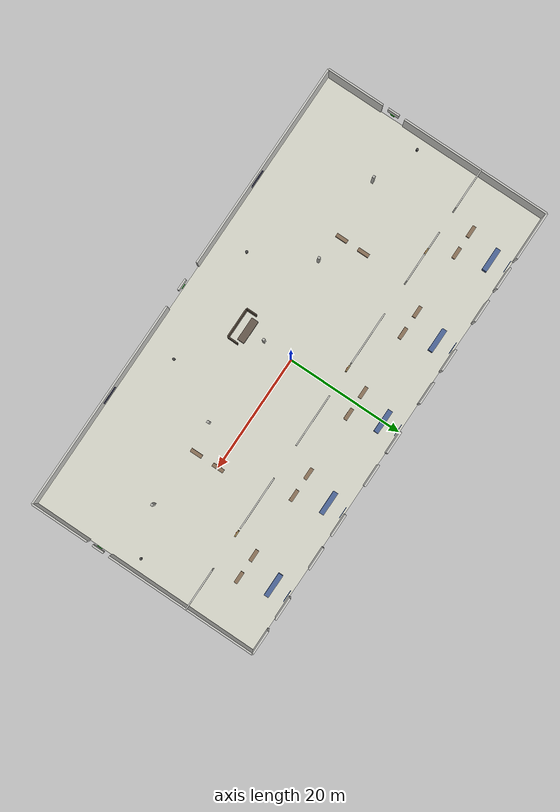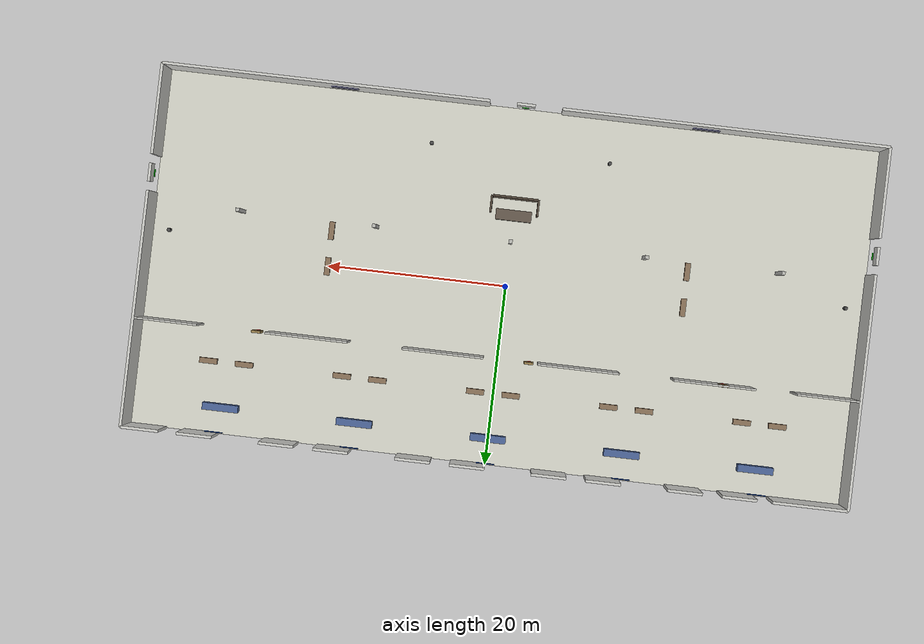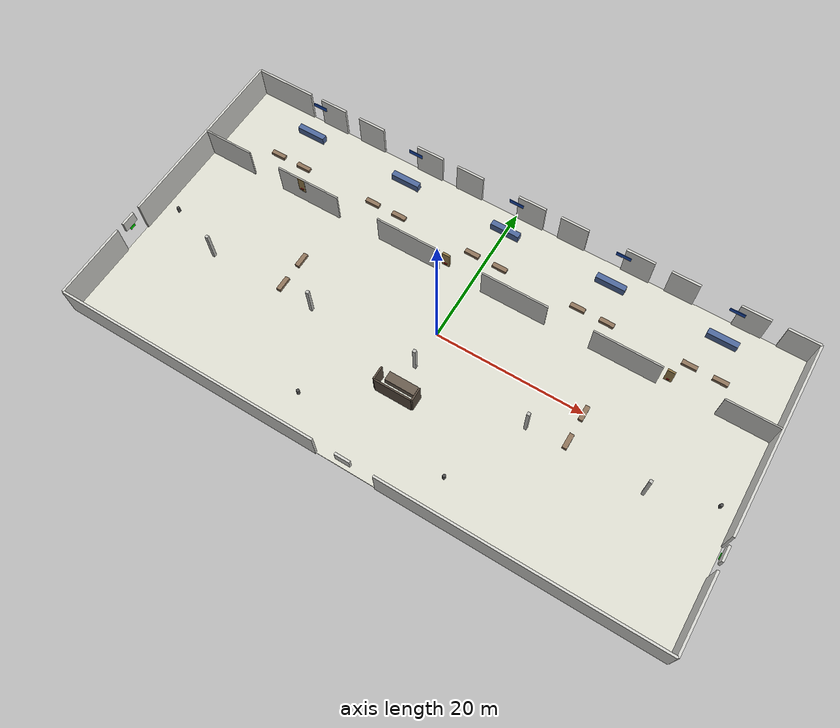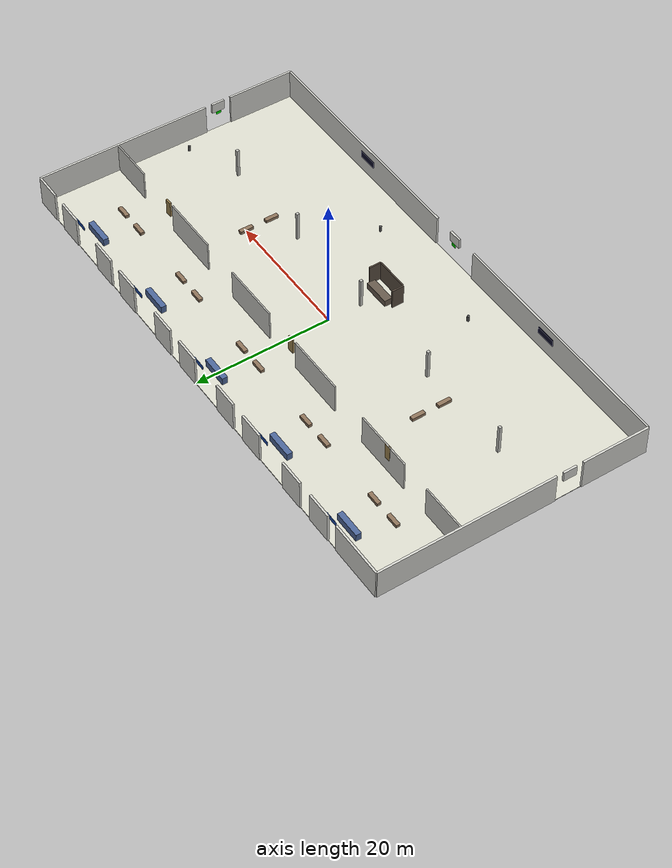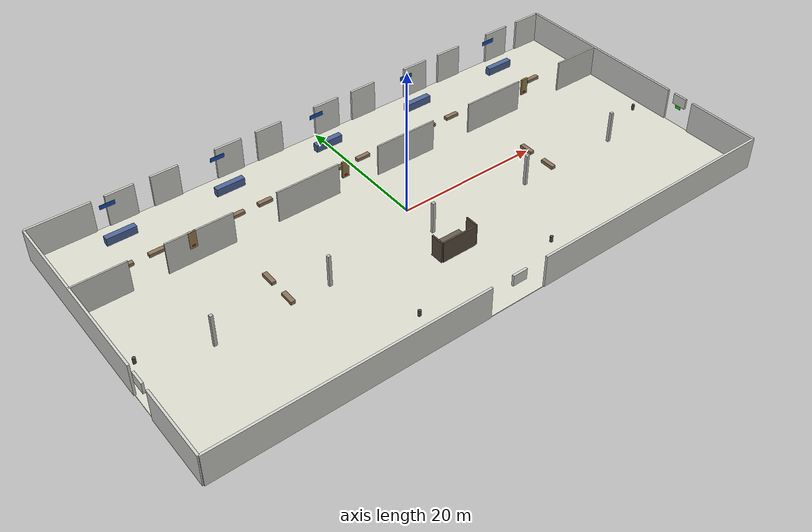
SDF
<?xml version="1.0" ?>
<sdf version="1.10">
  <world name="airport_terminal">

    <!--  SYSTEM PLUGINS                                         -->
    <plugin filename="gz-sim-physics-system"
            name="gz::sim::systems::Physics"/>
    <plugin filename="gz-sim-sensors-system"
            name="gz::sim::systems::Sensors">
      <render_engine>ogre</render_engine>
    </plugin>
    <plugin filename="gz-sim-scene-broadcaster-system"
            name="gz::sim::systems::SceneBroadcaster"/>
    <plugin filename="gz-sim-user-commands-system"
            name="gz::sim::systems::UserCommands"/>
    <plugin filename="gz-sim-contact-system"
            name="gz::sim::systems::Contact"/>

    <!--  PHYSIK                                                 -->
    <physics name="default_physics" type="ignored">
      <max_step_size>0.004</max_step_size>
      <real_time_factor>1.0</real_time_factor>
      <real_time_update_rate>250</real_time_update_rate>
    </physics>

    <!--  BELEUCHTUNG – Innenraum (kein Sonnenlicht)             -->
    <ambient>0.6 0.6 0.6 1</ambient>
    <background>0.2 0.2 0.2 1</background>

    <!-- Hauptbeleuchtung – gleichmäßig wie Neonröhren -->
    <light name="light_main" type="directional">
      <pose>0 0 4.0 0 0 0</pose>
      <cast_shadows>false</cast_shadows>
      <diffuse>0.95 0.95 1.0 1</diffuse>
      <specular>0.2 0.2 0.2 1</specular>
      <direction>0 0 -1</direction>
      <attenuation>
        <range>1000</range>
        <constant>0.9</constant>
        <linear>0.01</linear>
        <quadratic>0.0001</quadratic>
      </attenuation>
    </light>

    <!-- Punktlichter entlang des Korridors (Deckenlampen) -->
    <light name="lamp_1" type="point">
      <pose>-30 0 4.2 0 0 0</pose>
      <diffuse>1.0 1.0 0.95 1</diffuse>
      <specular>0.1 0.1 0.1 1</specular>
      <attenuation><range>20</range><constant>0.5</constant><linear>0.05</linear><quadratic>0.001</quadratic></attenuation>
      <cast_shadows>false</cast_shadows>
    </light>
    <light name="lamp_2" type="point">
      <pose>-15 0 4.2 0 0 0</pose>
      <diffuse>1.0 1.0 0.95 1</diffuse>
      <specular>0.1 0.1 0.1 1</specular>
      <attenuation><range>20</range><constant>0.5</constant><linear>0.05</linear><quadratic>0.001</quadratic></attenuation>
      <cast_shadows>false</cast_shadows>
    </light>
    <light name="lamp_3" type="point">
      <pose>0 0 4.2 0 0 0</pose>
      <diffuse>1.0 1.0 0.95 1</diffuse>
      <specular>0.1 0.1 0.1 1</specular>
      <attenuation><range>20</range><constant>0.5</constant><linear>0.05</linear><quadratic>0.001</quadratic></attenuation>
      <cast_shadows>false</cast_shadows>
    </light>
    <light name="lamp_4" type="point">
      <pose>15 0 4.2 0 0 0</pose>
      <diffuse>1.0 1.0 0.95 1</diffuse>
      <specular>0.1 0.1 0.1 1</specular>
      <attenuation><range>20</range><constant>0.5</constant><linear>0.05</linear><quadratic>0.001</quadratic></attenuation>
      <cast_shadows>false</cast_shadows>
    </light>
    <light name="lamp_5" type="point">
      <pose>30 0 4.2 0 0 0</pose>
      <diffuse>1.0 1.0 0.95 1</diffuse>
      <specular>0.1 0.1 0.1 1</specular>
      <attenuation><range>20</range><constant>0.5</constant><linear>0.05</linear><quadratic>0.001</quadratic></attenuation>
      <cast_shadows>false</cast_shadows>
    </light>
    <!-- Gate-Bereich Lichter -->
    <light name="lamp_gate_1" type="point">
      <pose>-30 15 4.2 0 0 0</pose>
      <diffuse>1.0 1.0 0.95 1</diffuse>
      <specular>0.1 0.1 0.1 1</specular>
      <attenuation><range>15</range><constant>0.5</constant><linear>0.05</linear><quadratic>0.001</quadratic></attenuation>
      <cast_shadows>false</cast_shadows>
    </light>
    <light name="lamp_gate_2" type="point">
      <pose>-15 15 4.2 0 0 0</pose>
      <diffuse>1.0 1.0 0.95 1</diffuse>
      <specular>0.1 0.1 0.1 1</specular>
      <attenuation><range>15</range><constant>0.5</constant><linear>0.05</linear><quadratic>0.001</quadratic></attenuation>
      <cast_shadows>false</cast_shadows>
    </light>
    <light name="lamp_gate_3" type="point">
      <pose>0 15 4.2 0 0 0</pose>
      <diffuse>1.0 1.0 0.95 1</diffuse>
      <specular>0.1 0.1 0.1 1</specular>
      <attenuation><range>15</range><constant>0.5</constant><linear>0.05</linear><quadratic>0.001</quadratic></attenuation>
      <cast_shadows>false</cast_shadows>
    </light>
    <light name="lamp_gate_4" type="point">
      <pose>15 15 4.2 0 0 0</pose>
      <diffuse>1.0 1.0 0.95 1</diffuse>
      <specular>0.1 0.1 0.1 1</specular>
      <attenuation><range>15</range><constant>0.5</constant><linear>0.05</linear><quadratic>0.001</quadratic></attenuation>
      <cast_shadows>false</cast_shadows>
    </light>
    <light name="lamp_gate_5" type="point">
      <pose>30 15 4.2 0 0 0</pose>
      <diffuse>1.0 1.0 0.95 1</diffuse>
      <specular>0.1 0.1 0.1 1</specular>
      <attenuation><range>15</range><constant>0.5</constant><linear>0.05</linear><quadratic>0.001</quadratic></attenuation>
      <cast_shadows>false</cast_shadows>
    </light>

    <!--  BODEN – Terminalboden (80m × 40m)                      -->
    <model name="terminal_floor">
      <static>true</static>
      <pose>0 0 0 0 0 0</pose>
      <link name="link">
        <collision name="collision">
          <geometry>
            <box><size>80 40 0.1</size></box>
          </geometry>
          <surface>
            <friction><ode><mu>0.8</mu><mu2>0.8</mu2></ode></friction>
          </surface>
        </collision>
        <visual name="visual">
          <geometry>
            <box><size>80 40 0.1</size></box>
          </geometry>
          <material>
            <ambient>0.85 0.85 0.80 1</ambient>
            <diffuse>0.85 0.85 0.80 1</diffuse>
            <specular>0.3 0.3 0.3 1</specular>
          </material>
        </visual>
        <pose>0 0 -0.05 0 0 0</pose>
      </link>
    </model>

    <!--  AUSSENWÄNDE                                             -->
    <!--  Terminal: 80m lang (X), 40m breit (Y), 4.5m hoch       -->
    <!--  Wand-Dicke: 0.3m (realistisch Beton/Mauerwerk)         -->

    <!-- Nordwand (Y=+20) – Gate-Seite, mit Gate-Öffnungen -->
    <!-- Segment West -->
    <model name="wall_north_w1">
      <static>true</static>
      <pose>-35.85 20 2.25 0 0 0</pose>
      <link name="link">
        <collision name="col"><geometry><box><size>8.3 0.3 4.5</size></box></geometry></collision>
        <visual name="vis"><geometry><box><size>8.3 0.3 4.5</size></box></geometry>
          <material><ambient>0.82 0.82 0.80 1</ambient><diffuse>0.82 0.82 0.80 1</diffuse></material>
        </visual>
      </link>
    </model>
    <!-- Gate A1 Öffnung bei X=-30 (Breite 3.5m) -->
    <model name="wall_north_w2">
      <static>true</static>
      <pose>-28.075 20 2.25 0 0 0</pose>
      <link name="link">
        <collision name="col"><geometry><box><size>3.85 0.3 4.5</size></box></geometry></collision>
        <visual name="vis"><geometry><box><size>3.85 0.3 4.5</size></box></geometry>
          <material><ambient>0.82 0.82 0.80 1</ambient><diffuse>0.82 0.82 0.80 1</diffuse></material>
        </visual>
      </link>
    </model>
    <model name="wall_north_w3">
      <static>true</static>
      <pose>-22.075 20 2.25 0 0 0</pose>
      <link name="link">
        <collision name="col"><geometry><box><size>3.85 0.3 4.5</size></box></geometry></collision>
        <visual name="vis"><geometry><box><size>3.85 0.3 4.5</size></box></geometry>
          <material><ambient>0.82 0.82 0.80 1</ambient><diffuse>0.82 0.82 0.80 1</diffuse></material>
        </visual>
      </link>
    </model>
    <!-- Gate A2 Öffnung bei X=-15 -->
    <model name="wall_north_w4">
      <static>true</static>
      <pose>-13.075 20 2.25 0 0 0</pose>
      <link name="link">
        <collision name="col"><geometry><box><size>3.85 0.3 4.5</size></box></geometry></collision>
        <visual name="vis"><geometry><box><size>3.85 0.3 4.5</size></box></geometry>
          <material><ambient>0.82 0.82 0.80 1</ambient><diffuse>0.82 0.82 0.80 1</diffuse></material>
        </visual>
      </link>
    </model>
    <model name="wall_north_w5">
      <static>true</static>
      <pose>-7.075 20 2.25 0 0 0</pose>
      <link name="link">
        <collision name="col"><geometry><box><size>3.85 0.3 4.5</size></box></geometry></collision>
        <visual name="vis"><geometry><box><size>3.85 0.3 4.5</size></box></geometry>
          <material><ambient>0.82 0.82 0.80 1</ambient><diffuse>0.82 0.82 0.80 1</diffuse></material>
        </visual>
      </link>
    </model>
    <!-- Gate A3 Öffnung bei X=0 -->
    <model name="wall_north_w6">
      <static>true</static>
      <pose>1.925 20 2.25 0 0 0</pose>
      <link name="link">
        <collision name="col"><geometry><box><size>3.85 0.3 4.5</size></box></geometry></collision>
        <visual name="vis"><geometry><box><size>3.85 0.3 4.5</size></box></geometry>
          <material><ambient>0.82 0.82 0.80 1</ambient><diffuse>0.82 0.82 0.80 1</diffuse></material>
        </visual>
      </link>
    </model>
    <model name="wall_north_w7">
      <static>true</static>
      <pose>7.925 20 2.25 0 0 0</pose>
      <link name="link">
        <collision name="col"><geometry><box><size>3.85 0.3 4.5</size></box></geometry></collision>
        <visual name="vis"><geometry><box><size>3.85 0.3 4.5</size></box></geometry>
          <material><ambient>0.82 0.82 0.80 1</ambient><diffuse>0.82 0.82 0.80 1</diffuse></material>
        </visual>
      </link>
    </model>
    <!-- Gate A4 Öffnung bei X=15 -->
    <model name="wall_north_w8">
      <static>true</static>
      <pose>16.925 20 2.25 0 0 0</pose>
      <link name="link">
        <collision name="col"><geometry><box><size>3.85 0.3 4.5</size></box></geometry></collision>
        <visual name="vis"><geometry><box><size>3.85 0.3 4.5</size></box></geometry>
          <material><ambient>0.82 0.82 0.80 1</ambient><diffuse>0.82 0.82 0.80 1</diffuse></material>
        </visual>
      </link>
    </model>
    <model name="wall_north_w9">
      <static>true</static>
      <pose>22.925 20 2.25 0 0 0</pose>
      <link name="link">
        <collision name="col"><geometry><box><size>3.85 0.3 4.5</size></box></geometry></collision>
        <visual name="vis"><geometry><box><size>3.85 0.3 4.5</size></box></geometry>
          <material><ambient>0.82 0.82 0.80 1</ambient><diffuse>0.82 0.82 0.80 1</diffuse></material>
        </visual>
      </link>
    </model>
    <!-- Gate A5 Öffnung bei X=30 -->
    <model name="wall_north_w10">
      <static>true</static>
      <pose>31.925 20 2.25 0 0 0</pose>
      <link name="link">
        <collision name="col"><geometry><box><size>3.85 0.3 4.5</size></box></geometry></collision>
        <visual name="vis"><geometry><box><size>3.85 0.3 4.5</size></box></geometry>
          <material><ambient>0.82 0.82 0.80 1</ambient><diffuse>0.82 0.82 0.80 1</diffuse></material>
        </visual>
      </link>
    </model>
    <model name="wall_north_e1">
      <static>true</static>
      <pose>37.925 20 2.25 0 0 0</pose>
      <link name="link">
        <collision name="col"><geometry><box><size>4.15 0.3 4.5</size></box></geometry></collision>
        <visual name="vis"><geometry><box><size>4.15 0.3 4.5</size></box></geometry>
          <material><ambient>0.82 0.82 0.80 1</ambient><diffuse>0.82 0.82 0.80 1</diffuse></material>
        </visual>
      </link>
    </model>

    <!-- Südwand (Y=-20) – mit 1 Notausgang in der Mitte -->
    <model name="wall_south_w1">
      <static>true</static>
      <pose>-22 -20 2.25 0 0 0</pose>
      <link name="link">
        <collision name="col"><geometry><box><size>36 0.3 4.5</size></box></geometry></collision>
        <visual name="vis"><geometry><box><size>36 0.3 4.5</size></box></geometry>
          <material><ambient>0.82 0.82 0.80 1</ambient><diffuse>0.82 0.82 0.80 1</diffuse></material>
        </visual>
      </link>
    </model>
    <!-- Notausgang Mitte-Süd (Breite 2.0m) bei X=0 -->
    <model name="wall_south_emergency_door_frame">
      <static>true</static>
      <pose>0 -20 3.75 0 0 0</pose>
      <link name="link">
        <collision name="col"><geometry><box><size>2.0 0.3 1.5</size></box></geometry></collision>
        <visual name="vis"><geometry><box><size>2.0 0.3 1.5</size></box></geometry>
          <material><ambient>0.82 0.82 0.80 1</ambient><diffuse>0.82 0.82 0.80 1</diffuse></material>
        </visual>
      </link>
    </model>
    <model name="wall_south_w2">
      <static>true</static>
      <pose>22 -20 2.25 0 0 0</pose>
      <link name="link">
        <collision name="col"><geometry><box><size>36 0.3 4.5</size></box></geometry></collision>
        <visual name="vis"><geometry><box><size>36 0.3 4.5</size></box></geometry>
          <material><ambient>0.82 0.82 0.80 1</ambient><diffuse>0.82 0.82 0.80 1</diffuse></material>
        </visual>
      </link>
    </model>

    <!-- Westwand (X=-40) – mit 1 Notausgang -->
    <model name="wall_west_w1">
      <static>true</static>
      <pose>-40 7 2.25 0 0 0</pose>
      <link name="link">
        <collision name="col"><geometry><box><size>0.3 26 4.5</size></box></geometry></collision>
        <visual name="vis"><geometry><box><size>0.3 26 4.5</size></box></geometry>
          <material><ambient>0.82 0.82 0.80 1</ambient><diffuse>0.82 0.82 0.80 1</diffuse></material>
        </visual>
      </link>
    </model>
    <!-- Notausgang West (Y=-8, Breite 2.0m) -->
    <model name="wall_west_emergency_frame">
      <static>true</static>
      <pose>-40 -8 3.75 0 0 0</pose>
      <link name="link">
        <collision name="col"><geometry><box><size>0.3 2.0 1.5</size></box></geometry></collision>
        <visual name="vis"><geometry><box><size>0.3 2.0 1.5</size></box></geometry>
          <material><ambient>0.82 0.82 0.80 1</ambient><diffuse>0.82 0.82 0.80 1</diffuse></material>
        </visual>
      </link>
    </model>
    <model name="wall_west_w2">
      <static>true</static>
      <pose>-40 -15 2.25 0 0 0</pose>
      <link name="link">
        <collision name="col"><geometry><box><size>0.3 10 4.5</size></box></geometry></collision>
        <visual name="vis"><geometry><box><size>0.3 10 4.5</size></box></geometry>
          <material><ambient>0.82 0.82 0.80 1</ambient><diffuse>0.82 0.82 0.80 1</diffuse></material>
        </visual>
      </link>
    </model>

    <!-- Ostwand (X=+40) – mit 1 Notausgang -->
    <model name="wall_east_w1">
      <static>true</static>
      <pose>40 7 2.25 0 0 0</pose>
      <link name="link">
        <collision name="col"><geometry><box><size>0.3 26 4.5</size></box></geometry></collision>
        <visual name="vis"><geometry><box><size>0.3 26 4.5</size></box></geometry>
          <material><ambient>0.82 0.82 0.80 1</ambient><diffuse>0.82 0.82 0.80 1</diffuse></material>
        </visual>
      </link>
    </model>
    <!-- Notausgang Ost (Y=-8, Breite 2.0m) -->
    <model name="wall_east_emergency_frame">
      <static>true</static>
      <pose>40 -8 3.75 0 0 0</pose>
      <link name="link">
        <collision name="col"><geometry><box><size>0.3 2.0 1.5</size></box></geometry></collision>
        <visual name="vis"><geometry><box><size>0.3 2.0 1.5</size></box></geometry>
          <material><ambient>0.82 0.82 0.80 1</ambient><diffuse>0.82 0.82 0.80 1</diffuse></material>
        </visual>
      </link>
    </model>
    <model name="wall_east_w2">
      <static>true</static>
      <pose>40 -15 2.25 0 0 0</pose>
      <link name="link">
        <collision name="col"><geometry><box><size>0.3 10 4.5</size></box></geometry></collision>
        <visual name="vis"><geometry><box><size>0.3 10 4.5</size></box></geometry>
          <material><ambient>0.82 0.82 0.80 1</ambient><diffuse>0.82 0.82 0.80 1</diffuse></material>
        </visual>
      </link>
    </model>

    <!--  NOTAUSGANG-SCHILDER (grüne Markierungen)               -->
    <model name="emergency_sign_south">
      <static>true</static>
      <pose>0 -19.8 2.8 0 0 0</pose>
      <link name="link">
        <visual name="vis">
          <geometry><box><size>0.8 0.05 0.4</size></box></geometry>
          <material><ambient>0.0 0.8 0.0 1</ambient><diffuse>0.0 0.9 0.0 1</diffuse><emissive>0.0 0.5 0.0 1</emissive></material>
        </visual>
      </link>
    </model>
    <model name="emergency_sign_west">
      <static>true</static>
      <pose>-39.8 -8 2.8 0 0 1.5708</pose>
      <link name="link">
        <visual name="vis">
          <geometry><box><size>0.8 0.05 0.4</size></box></geometry>
          <material><ambient>0.0 0.8 0.0 1</ambient><diffuse>0.0 0.9 0.0 1</diffuse><emissive>0.0 0.5 0.0 1</emissive></material>
        </visual>
      </link>
    </model>
    <model name="emergency_sign_east">
      <static>true</static>
      <pose>39.8 -8 2.8 0 0 1.5708</pose>
      <link name="link">
        <visual name="vis">
          <geometry><box><size>0.8 0.05 0.4</size></box></geometry>
          <material><ambient>0.0 0.8 0.0 1</ambient><diffuse>0.0 0.9 0.0 1</diffuse><emissive>0.0 0.5 0.0 1</emissive></material>
        </visual>
      </link>
    </model>

    <!--  TRENNWAND: Korridor ↔ Gate-Bereich                     -->
    <!--  Y=+8: Wand mit 5 Durchgängen (je Gate ein Eingang)     -->
    <model name="divider_w1">
      <static>true</static>
      <pose>-36.5 8 2.25 0 0 0</pose>
      <link name="link">
        <collision name="col"><geometry><box><size>7.0 0.2 4.5</size></box></geometry></collision>
        <visual name="vis"><geometry><box><size>7.0 0.2 4.5</size></box></geometry>
          <material><ambient>0.78 0.78 0.76 1</ambient><diffuse>0.78 0.78 0.76 1</diffuse></material>
        </visual>
      </link>
    </model>
    <model name="divider_w2">
      <static>true</static>
      <pose>-24 8 2.25 0 0 0</pose>
      <link name="link">
        <collision name="col"><geometry><box><size>9.0 0.2 4.5</size></box></geometry></collision>
        <visual name="vis"><geometry><box><size>9.0 0.2 4.5</size></box></geometry>
          <material><ambient>0.78 0.78 0.76 1</ambient><diffuse>0.78 0.78 0.76 1</diffuse></material>
        </visual>
      </link>
    </model>
    <model name="divider_w3">
      <static>true</static>
      <pose>-9 8 2.25 0 0 0</pose>
      <link name="link">
        <collision name="col"><geometry><box><size>9.0 0.2 4.5</size></box></geometry></collision>
        <visual name="vis"><geometry><box><size>9.0 0.2 4.5</size></box></geometry>
          <material><ambient>0.78 0.78 0.76 1</ambient><diffuse>0.78 0.78 0.76 1</diffuse></material>
        </visual>
      </link>
    </model>
    <model name="divider_w4">
      <static>true</static>
      <pose>6 8 2.25 0 0 0</pose>
      <link name="link">
        <collision name="col"><geometry><box><size>9.0 0.2 4.5</size></box></geometry></collision>
        <visual name="vis"><geometry><box><size>9.0 0.2 4.5</size></box></geometry>
          <material><ambient>0.78 0.78 0.76 1</ambient><diffuse>0.78 0.78 0.76 1</diffuse></material>
        </visual>
      </link>
    </model>
    <model name="divider_w5">
      <static>true</static>
      <pose>21 8 2.25 0 0 0</pose>
      <link name="link">
        <collision name="col"><geometry><box><size>9.0 0.2 4.5</size></box></geometry></collision>
        <visual name="vis"><geometry><box><size>9.0 0.2 4.5</size></box></geometry>
          <material><ambient>0.78 0.78 0.76 1</ambient><diffuse>0.78 0.78 0.76 1</diffuse></material>
        </visual>
      </link>
    </model>
    <model name="divider_w6">
      <static>true</static>
      <pose>36.5 8 2.25 0 0 0</pose>
      <link name="link">
        <collision name="col"><geometry><box><size>7.0 0.2 4.5</size></box></geometry></collision>
        <visual name="vis"><geometry><box><size>7.0 0.2 4.5</size></box></geometry>
          <material><ambient>0.78 0.78 0.76 1</ambient><diffuse>0.78 0.78 0.76 1</diffuse></material>
        </visual>
      </link>
    </model>

    <!--  GATE-TRESEN (5 Boarding Gates)                         -->
    <!--  Realistisch: 4m breit, 1.1m hoch, 0.8m tief           -->
    <!--  Positionen: X = -30, -15, 0, 15, 30 / Y = 17          -->

    <!-- Gate A1 -->
    <model name="gate_counter_A1">
      <static>true</static>
      <pose>-30 17 0.55 0 0 0</pose>
      <link name="link">
        <collision name="col"><geometry><box><size>4.0 0.8 1.1</size></box></geometry></collision>
        <visual name="vis"><geometry><box><size>4.0 0.8 1.1</size></box></geometry>
          <material><ambient>0.3 0.4 0.6 1</ambient><diffuse>0.3 0.4 0.6 1</diffuse><specular>0.2 0.2 0.3 1</specular></material>
        </visual>
      </link>
    </model>
    <model name="gate_sign_A1">
      <static>true</static>
      <pose>-30 19.5 3.5 0 0 0</pose>
      <link name="link">
        <visual name="vis"><geometry><box><size>2.0 0.05 0.6</size></box></geometry>
          <material><ambient>0.1 0.3 0.7 1</ambient><diffuse>0.1 0.3 0.7 1</diffuse><emissive>0.05 0.15 0.4 1</emissive></material>
        </visual>
      </link>
    </model>

    <!-- Gate A2 -->
    <model name="gate_counter_A2">
      <static>true</static>
      <pose>-15 17 0.55 0 0 0</pose>
      <link name="link">
        <collision name="col"><geometry><box><size>4.0 0.8 1.1</size></box></geometry></collision>
        <visual name="vis"><geometry><box><size>4.0 0.8 1.1</size></box></geometry>
          <material><ambient>0.3 0.4 0.6 1</ambient><diffuse>0.3 0.4 0.6 1</diffuse><specular>0.2 0.2 0.3 1</specular></material>
        </visual>
      </link>
    </model>
    <model name="gate_sign_A2">
      <static>true</static>
      <pose>-15 19.5 3.5 0 0 0</pose>
      <link name="link">
        <visual name="vis"><geometry><box><size>2.0 0.05 0.6</size></box></geometry>
          <material><ambient>0.1 0.3 0.7 1</ambient><diffuse>0.1 0.3 0.7 1</diffuse><emissive>0.05 0.15 0.4 1</emissive></material>
        </visual>
      </link>
    </model>

    <!-- Gate A3 -->
    <model name="gate_counter_A3">
      <static>true</static>
      <pose>0 17 0.55 0 0 0</pose>
      <link name="link">
        <collision name="col"><geometry><box><size>4.0 0.8 1.1</size></box></geometry></collision>
        <visual name="vis"><geometry><box><size>4.0 0.8 1.1</size></box></geometry>
          <material><ambient>0.3 0.4 0.6 1</ambient><diffuse>0.3 0.4 0.6 1</diffuse><specular>0.2 0.2 0.3 1</specular></material>
        </visual>
      </link>
    </model>
    <model name="gate_sign_A3">
      <static>true</static>
      <pose>0 19.5 3.5 0 0 0</pose>
      <link name="link">
        <visual name="vis"><geometry><box><size>2.0 0.05 0.6</size></box></geometry>
          <material><ambient>0.1 0.3 0.7 1</ambient><diffuse>0.1 0.3 0.7 1</diffuse><emissive>0.05 0.15 0.4 1</emissive></material>
        </visual>
      </link>
    </model>

    <!-- Gate A4 -->
    <model name="gate_counter_A4">
      <static>true</static>
      <pose>15 17 0.55 0 0 0</pose>
      <link name="link">
        <collision name="col"><geometry><box><size>4.0 0.8 1.1</size></box></geometry></collision>
        <visual name="vis"><geometry><box><size>4.0 0.8 1.1</size></box></geometry>
          <material><ambient>0.3 0.4 0.6 1</ambient><diffuse>0.3 0.4 0.6 1</diffuse><specular>0.2 0.2 0.3 1</specular></material>
        </visual>
      </link>
    </model>
    <model name="gate_sign_A4">
      <static>true</static>
      <pose>15 19.5 3.5 0 0 0</pose>
      <link name="link">
        <visual name="vis"><geometry><box><size>2.0 0.05 0.6</size></box></geometry>
          <material><ambient>0.1 0.3 0.7 1</ambient><diffuse>0.1 0.3 0.7 1</diffuse><emissive>0.05 0.15 0.4 1</emissive></material>
        </visual>
      </link>
    </model>

    <!-- Gate A5 -->
    <model name="gate_counter_A5">
      <static>true</static>
      <pose>30 17 0.55 0 0 0</pose>
      <link name="link">
        <collision name="col"><geometry><box><size>4.0 0.8 1.1</size></box></geometry></collision>
        <visual name="vis"><geometry><box><size>4.0 0.8 1.1</size></box></geometry>
          <material><ambient>0.3 0.4 0.6 1</ambient><diffuse>0.3 0.4 0.6 1</diffuse><specular>0.2 0.2 0.3 1</specular></material>
        </visual>
      </link>
    </model>
    <model name="gate_sign_A5">
      <static>true</static>
      <pose>30 19.5 3.5 0 0 0</pose>
      <link name="link">
        <visual name="vis"><geometry><box><size>2.0 0.05 0.6</size></box></geometry>
          <material><ambient>0.1 0.3 0.7 1</ambient><diffuse>0.1 0.3 0.7 1</diffuse><emissive>0.05 0.15 0.4 1</emissive></material>
        </visual>
      </link>
    </model>

    <!--  SITZBÄNKE – Gate-Wartebereich (je Gate 2 Bänke)        -->
    <!--  Realistisch: 2.0m lang, 0.6m tief, 0.45m hoch          -->

    <!-- Bänke Gate A1 -->
    <model name="bench_A1_1">
      <static>true</static>
      <pose>-32 12 0.225 0 0 0</pose>
      <link name="link">
        <collision name="col"><geometry><box><size>2.0 0.6 0.45</size></box></geometry></collision>
        <visual name="vis"><geometry><box><size>2.0 0.6 0.45</size></box></geometry>
          <material><ambient>0.55 0.45 0.35 1</ambient><diffuse>0.55 0.45 0.35 1</diffuse></material>
        </visual>
      </link>
    </model>
    <model name="bench_A1_2">
      <static>true</static>
      <pose>-28 12 0.225 0 0 0</pose>
      <link name="link">
        <collision name="col"><geometry><box><size>2.0 0.6 0.45</size></box></geometry></collision>
        <visual name="vis"><geometry><box><size>2.0 0.6 0.45</size></box></geometry>
          <material><ambient>0.55 0.45 0.35 1</ambient><diffuse>0.55 0.45 0.35 1</diffuse></material>
        </visual>
      </link>
    </model>

    <!-- Bänke Gate A2 -->
    <model name="bench_A2_1">
      <static>true</static>
      <pose>-17 12 0.225 0 0 0</pose>
      <link name="link">
        <collision name="col"><geometry><box><size>2.0 0.6 0.45</size></box></geometry></collision>
        <visual name="vis"><geometry><box><size>2.0 0.6 0.45</size></box></geometry>
          <material><ambient>0.55 0.45 0.35 1</ambient><diffuse>0.55 0.45 0.35 1</diffuse></material>
        </visual>
      </link>
    </model>
    <model name="bench_A2_2">
      <static>true</static>
      <pose>-13 12 0.225 0 0 0</pose>
      <link name="link">
        <collision name="col"><geometry><box><size>2.0 0.6 0.45</size></box></geometry></collision>
        <visual name="vis"><geometry><box><size>2.0 0.6 0.45</size></box></geometry>
          <material><ambient>0.55 0.45 0.35 1</ambient><diffuse>0.55 0.45 0.35 1</diffuse></material>
        </visual>
      </link>
    </model>

    <!-- Bänke Gate A3 -->
    <model name="bench_A3_1">
      <static>true</static>
      <pose>-2 12 0.225 0 0 0</pose>
      <link name="link">
        <collision name="col"><geometry><box><size>2.0 0.6 0.45</size></box></geometry></collision>
        <visual name="vis"><geometry><box><size>2.0 0.6 0.45</size></box></geometry>
          <material><ambient>0.55 0.45 0.35 1</ambient><diffuse>0.55 0.45 0.35 1</diffuse></material>
        </visual>
      </link>
    </model>
    <model name="bench_A3_2">
      <static>true</static>
      <pose>2 12 0.225 0 0 0</pose>
      <link name="link">
        <collision name="col"><geometry><box><size>2.0 0.6 0.45</size></box></geometry></collision>
        <visual name="vis"><geometry><box><size>2.0 0.6 0.45</size></box></geometry>
          <material><ambient>0.55 0.45 0.35 1</ambient><diffuse>0.55 0.45 0.35 1</diffuse></material>
        </visual>
      </link>
    </model>

    <!-- Bänke Gate A4 -->
    <model name="bench_A4_1">
      <static>true</static>
      <pose>13 12 0.225 0 0 0</pose>
      <link name="link">
        <collision name="col"><geometry><box><size>2.0 0.6 0.45</size></box></geometry></collision>
        <visual name="vis"><geometry><box><size>2.0 0.6 0.45</size></box></geometry>
          <material><ambient>0.55 0.45 0.35 1</ambient><diffuse>0.55 0.45 0.35 1</diffuse></material>
        </visual>
      </link>
    </model>
    <model name="bench_A4_2">
      <static>true</static>
      <pose>17 12 0.225 0 0 0</pose>
      <link name="link">
        <collision name="col"><geometry><box><size>2.0 0.6 0.45</size></box></geometry></collision>
        <visual name="vis"><geometry><box><size>2.0 0.6 0.45</size></box></geometry>
          <material><ambient>0.55 0.45 0.35 1</ambient><diffuse>0.55 0.45 0.35 1</diffuse></material>
        </visual>
      </link>
    </model>

    <!-- Bänke Gate A5 -->
    <model name="bench_A5_1">
      <static>true</static>
      <pose>28 12 0.225 0 0 0</pose>
      <link name="link">
        <collision name="col"><geometry><box><size>2.0 0.6 0.45</size></box></geometry></collision>
        <visual name="vis"><geometry><box><size>2.0 0.6 0.45</size></box></geometry>
          <material><ambient>0.55 0.45 0.35 1</ambient><diffuse>0.55 0.45 0.35 1</diffuse></material>
        </visual>
      </link>
    </model>
    <model name="bench_A5_2">
      <static>true</static>
      <pose>32 12 0.225 0 0 0</pose>
      <link name="link">
        <collision name="col"><geometry><box><size>2.0 0.6 0.45</size></box></geometry></collision>
        <visual name="vis"><geometry><box><size>2.0 0.6 0.45</size></box></geometry>
          <material><ambient>0.55 0.45 0.35 1</ambient><diffuse>0.55 0.45 0.35 1</diffuse></material>
        </visual>
      </link>
    </model>

    <!-- Sitzbänke Hauptkorridor (Wartebereich Mitte) -->
    <model name="bench_corridor_1">
      <static>true</static>
      <pose>-20 0 0.225 0 0 1.5708</pose>
      <link name="link">
        <collision name="col"><geometry><box><size>2.0 0.6 0.45</size></box></geometry></collision>
        <visual name="vis"><geometry><box><size>2.0 0.6 0.45</size></box></geometry>
          <material><ambient>0.55 0.45 0.35 1</ambient><diffuse>0.55 0.45 0.35 1</diffuse></material>
        </visual>
      </link>
    </model>
    <model name="bench_corridor_2">
      <static>true</static>
      <pose>-20 -4 0.225 0 0 1.5708</pose>
      <link name="link">
        <collision name="col"><geometry><box><size>2.0 0.6 0.45</size></box></geometry></collision>
        <visual name="vis"><geometry><box><size>2.0 0.6 0.45</size></box></geometry>
          <material><ambient>0.55 0.45 0.35 1</ambient><diffuse>0.55 0.45 0.35 1</diffuse></material>
        </visual>
      </link>
    </model>
    <model name="bench_corridor_3">
      <static>true</static>
      <pose>20 0 0.225 0 0 1.5708</pose>
      <link name="link">
        <collision name="col"><geometry><box><size>2.0 0.6 0.45</size></box></geometry></collision>
        <visual name="vis"><geometry><box><size>2.0 0.6 0.45</size></box></geometry>
          <material><ambient>0.55 0.45 0.35 1</ambient><diffuse>0.55 0.45 0.35 1</diffuse></material>
        </visual>
      </link>
    </model>
    <model name="bench_corridor_4">
      <static>true</static>
      <pose>20 -4 0.225 0 0 1.5708</pose>
      <link name="link">
        <collision name="col"><geometry><box><size>2.0 0.6 0.45</size></box></geometry></collision>
        <visual name="vis"><geometry><box><size>2.0 0.6 0.45</size></box></geometry>
          <material><ambient>0.55 0.45 0.35 1</ambient><diffuse>0.55 0.45 0.35 1</diffuse></material>
        </visual>
      </link>
    </model>

    <!--  PERSONAL-TÜREN (3 Stück, Südseite der Trennwand)       -->
    <!--  Türrahmen sichtbar, Öffnung 1.0m breit, 2.1m hoch      -->

    <!-- Personaltür 1 – West -->
    <model name="staff_door_frame_1">
      <static>true</static>
      <pose>-25 8 3.3 0 0 0</pose>
      <link name="link">
        <collision name="col"><geometry><box><size>1.0 0.25 2.4</size></box></geometry></collision>
        <visual name="vis"><geometry><box><size>1.0 0.25 2.4</size></box></geometry>
          <material><ambient>0.6 0.5 0.3 1</ambient><diffuse>0.6 0.5 0.3 1</diffuse></material>
        </visual>
      </link>
    </model>
    <!-- Türklinke / Schild -->
    <model name="staff_door_sign_1">
      <static>true</static>
      <pose>-25 7.85 2.5 0 0 0</pose>
      <link name="link">
        <visual name="vis"><geometry><box><size>0.4 0.05 0.2</size></box></geometry>
          <material><ambient>0.8 0.1 0.1 1</ambient><diffuse>0.8 0.1 0.1 1</diffuse></material>
        </visual>
      </link>
    </model>

    <!-- Personaltür 2 – Mitte -->
    <model name="staff_door_frame_2">
      <static>true</static>
      <pose>-3.5 8 3.3 0 0 0</pose>
      <link name="link">
        <collision name="col"><geometry><box><size>1.0 0.25 2.4</size></box></geometry></collision>
        <visual name="vis"><geometry><box><size>1.0 0.25 2.4</size></box></geometry>
          <material><ambient>0.6 0.5 0.3 1</ambient><diffuse>0.6 0.5 0.3 1</diffuse></material>
        </visual>
      </link>
    </model>
    <model name="staff_door_sign_2">
      <static>true</static>
      <pose>-3.5 7.85 2.5 0 0 0</pose>
      <link name="link">
        <visual name="vis"><geometry><box><size>0.4 0.05 0.2</size></box></geometry>
          <material><ambient>0.8 0.1 0.1 1</ambient><diffuse>0.8 0.1 0.1 1</diffuse></material>
        </visual>
      </link>
    </model>

    <!-- Personaltür 3 – Ost -->
    <model name="staff_door_frame_3">
      <static>true</static>
      <pose>26.5 8 3.3 0 0 0</pose>
      <link name="link">
        <collision name="col"><geometry><box><size>1.0 0.25 2.4</size></box></geometry></collision>
        <visual name="vis"><geometry><box><size>1.0 0.25 2.4</size></box></geometry>
          <material><ambient>0.6 0.5 0.3 1</ambient><diffuse>0.6 0.5 0.3 1</diffuse></material>
        </visual>
      </link>
    </model>
    <model name="staff_door_sign_3">
      <static>true</static>
      <pose>26.5 7.85 2.5 0 0 0</pose>
      <link name="link">
        <visual name="vis"><geometry><box><size>0.4 0.05 0.2</size></box></geometry>
          <material><ambient>0.8 0.1 0.1 1</ambient><diffuse>0.8 0.1 0.1 1</diffuse></material>
        </visual>
      </link>
    </model>

    <!--  KIOSK / CAFÉ-THEKE im Hauptkorridor                    -->
    <model name="kiosk_counter">
      <static>true</static>
      <pose>0 -8 0.5 0 0 0</pose>
      <link name="link">
        <collision name="col"><geometry><box><size>4.0 1.2 1.0</size></box></geometry></collision>
        <visual name="vis"><geometry><box><size>4.0 1.2 1.0</size></box></geometry>
          <material><ambient>0.4 0.35 0.3 1</ambient><diffuse>0.4 0.35 0.3 1</diffuse><specular>0.15 0.15 0.15 1</specular></material>
        </visual>
      </link>
    </model>
    <!-- Kiosk Rückwand -->
    <model name="kiosk_backwall">
      <static>true</static>
      <pose>0 -9.9 1.5 0 0 0</pose>
      <link name="link">
        <collision name="col"><geometry><box><size>5.0 0.2 3.0</size></box></geometry></collision>
        <visual name="vis"><geometry><box><size>5.0 0.2 3.0</size></box></geometry>
          <material><ambient>0.35 0.3 0.25 1</ambient><diffuse>0.35 0.3 0.25 1</diffuse></material>
        </visual>
      </link>
    </model>
    <model name="kiosk_sidewall_l">
      <static>true</static>
      <pose>-2.6 -9.0 1.5 0 0 0</pose>
      <link name="link">
        <collision name="col"><geometry><box><size>0.2 1.8 3.0</size></box></geometry></collision>
        <visual name="vis"><geometry><box><size>0.2 1.8 3.0</size></box></geometry>
          <material><ambient>0.35 0.3 0.25 1</ambient><diffuse>0.35 0.3 0.25 1</diffuse></material>
        </visual>
      </link>
    </model>
    <model name="kiosk_sidewall_r">
      <static>true</static>
      <pose>2.6 -9.0 1.5 0 0 0</pose>
      <link name="link">
        <collision name="col"><geometry><box><size>0.2 1.8 3.0</size></box></geometry></collision>
        <visual name="vis"><geometry><box><size>0.2 1.8 3.0</size></box></geometry>
          <material><ambient>0.35 0.3 0.25 1</ambient><diffuse>0.35 0.3 0.25 1</diffuse></material>
        </visual>
      </link>
    </model>

    <!--  MÜLLBEHÄLTER (verteilt im Terminal)                    -->
    <model name="trash_1"><static>true</static><pose>-38 -2 0.4 0 0 0</pose>
      <link name="link">
        <collision name="col"><geometry><cylinder><radius>0.2</radius><length>0.8</length></cylinder></geometry></collision>
        <visual name="vis"><geometry><cylinder><radius>0.2</radius><length>0.8</length></cylinder></geometry>
          <material><ambient>0.3 0.3 0.3 1</ambient><diffuse>0.3 0.3 0.3 1</diffuse></material></visual>
      </link>
    </model>
    <model name="trash_2"><static>true</static><pose>38 -2 0.4 0 0 0</pose>
      <link name="link">
        <collision name="col"><geometry><cylinder><radius>0.2</radius><length>0.8</length></cylinder></geometry></collision>
        <visual name="vis"><geometry><cylinder><radius>0.2</radius><length>0.8</length></cylinder></geometry>
          <material><ambient>0.3 0.3 0.3 1</ambient><diffuse>0.3 0.3 0.3 1</diffuse></material></visual>
      </link>
    </model>
    <model name="trash_3"><static>true</static><pose>-10 -15 0.4 0 0 0</pose>
      <link name="link">
        <collision name="col"><geometry><cylinder><radius>0.2</radius><length>0.8</length></cylinder></geometry></collision>
        <visual name="vis"><geometry><cylinder><radius>0.2</radius><length>0.8</length></cylinder></geometry>
          <material><ambient>0.3 0.3 0.3 1</ambient><diffuse>0.3 0.3 0.3 1</diffuse></material></visual>
      </link>
    </model>
    <model name="trash_4"><static>true</static><pose>10 -15 0.4 0 0 0</pose>
      <link name="link">
        <collision name="col"><geometry><cylinder><radius>0.2</radius><length>0.8</length></cylinder></geometry></collision>
        <visual name="vis"><geometry><cylinder><radius>0.2</radius><length>0.8</length></cylinder></geometry>
          <material><ambient>0.3 0.3 0.3 1</ambient><diffuse>0.3 0.3 0.3 1</diffuse></material></visual>
      </link>
    </model>

    <!--  SÄULEN (strukturelle Stützen, realistisch alle ~10m)   -->
    <!--  0.4m × 0.4m, 4.5m hoch                                 -->
    <model name="pillar_1"><static>true</static><pose>-30 -5 2.25 0 0 0</pose>
      <link name="link">
        <collision name="col"><geometry><box><size>0.4 0.4 4.5</size></box></geometry></collision>
        <visual name="vis"><geometry><box><size>0.4 0.4 4.5</size></box></geometry>
          <material><ambient>0.75 0.75 0.73 1</ambient><diffuse>0.75 0.75 0.73 1</diffuse></material></visual>
      </link>
    </model>
    <model name="pillar_2"><static>true</static><pose>-15 -5 2.25 0 0 0</pose>
      <link name="link">
        <collision name="col"><geometry><box><size>0.4 0.4 4.5</size></box></geometry></collision>
        <visual name="vis"><geometry><box><size>0.4 0.4 4.5</size></box></geometry>
          <material><ambient>0.75 0.75 0.73 1</ambient><diffuse>0.75 0.75 0.73 1</diffuse></material></visual>
      </link>
    </model>
    <model name="pillar_3"><static>true</static><pose>0 -5 2.25 0 0 0</pose>
      <link name="link">
        <collision name="col"><geometry><box><size>0.4 0.4 4.5</size></box></geometry></collision>
        <visual name="vis"><geometry><box><size>0.4 0.4 4.5</size></box></geometry>
          <material><ambient>0.75 0.75 0.73 1</ambient><diffuse>0.75 0.75 0.73 1</diffuse></material></visual>
      </link>
    </model>
    <model name="pillar_4"><static>true</static><pose>15 -5 2.25 0 0 0</pose>
      <link name="link">
        <collision name="col"><geometry><box><size>0.4 0.4 4.5</size></box></geometry></collision>
        <visual name="vis"><geometry><box><size>0.4 0.4 4.5</size></box></geometry>
          <material><ambient>0.75 0.75 0.73 1</ambient><diffuse>0.75 0.75 0.73 1</diffuse></material></visual>
      </link>
    </model>
    <model name="pillar_5"><static>true</static><pose>30 -5 2.25 0 0 0</pose>
      <link name="link">
        <collision name="col"><geometry><box><size>0.4 0.4 4.5</size></box></geometry></collision>
        <visual name="vis"><geometry><box><size>0.4 0.4 4.5</size></box></geometry>
          <material><ambient>0.75 0.75 0.73 1</ambient><diffuse>0.75 0.75 0.73 1</diffuse></material></visual>
      </link>
    </model>

    <!--  ANZEIGETAFELN (Departure Boards) im Korridor           -->
    <model name="display_board_1">
      <static>true</static>
      <pose>-20 -19.7 3.0 0 0 0</pose>
      <link name="link">
        <visual name="vis"><geometry><box><size>3.0 0.1 1.0</size></box></geometry>
          <material><ambient>0.05 0.05 0.15 1</ambient><diffuse>0.05 0.05 0.15 1</diffuse><emissive>0.02 0.05 0.2 1</emissive></material>
        </visual>
      </link>
    </model>
    <model name="display_board_2">
      <static>true</static>
      <pose>20 -19.7 3.0 0 0 0</pose>
      <link name="link">
        <visual name="vis"><geometry><box><size>3.0 0.1 1.0</size></box></geometry>
          <material><ambient>0.05 0.05 0.15 1</ambient><diffuse>0.05 0.05 0.15 1</diffuse><emissive>0.02 0.05 0.2 1</emissive></material>
        </visual>
      </link>
    </model>

  </world>
</sdf>
